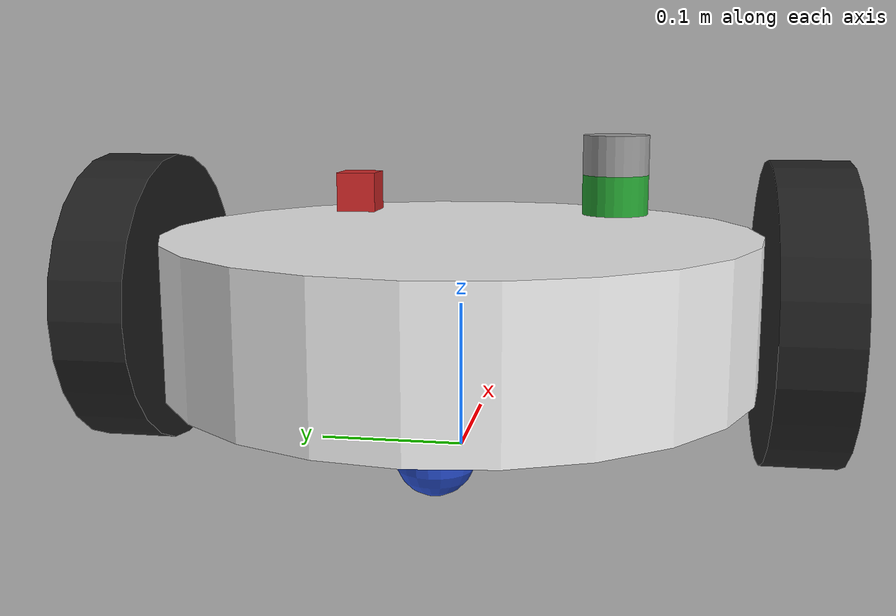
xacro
<?xml version="1.0" ?>
<!-- |    This document was autogenerated by xacro from diff_wheeled_robot.xacro       | -->
<!-- |    EDITING THIS FILE BY HAND IS NOT RECOMMENDED                                 | -->
<robot name="terry" xmlns:xacro="http://www.ros.org/wiki/xacro">

  <!-- PROPERTY LIST -->

  <!-- Constants -->
  <xacro:property name="PI" value="3.1415926535897931"/>
  <xacro:property name="density" value="1000"/> <!-- kg/m^3 -->

  <!-- Chassis dimensions -->
  <xacro:property name="rChassis" value="0.2" />  <!-- meters -->
  <xacro:property name="hChassis" value="0.1" /> <!-- meters -->
  <xacro:property name="mChassis" value="${density * PI * rChassis * rChassis * hChassis}" /> <!-- kg -->

  <!-- Wheel dimensions -->
  <xacro:property name="rWheel" value="0.1" />
  <xacro:property name="hWheel" value="0.05" />
  <xacro:property name="mWheel" value="${density * PI * rWheel * rWheel * hWheel}" />

  <!-- Caster wheel (sphere) dimensions -->
  <xacro:property name="rCaster" value="${(rWheel - hChassis/2.0) / 2.0}" />
  <xacro:property name="mCaster" value="${density * (4/3) * PI * rCaster * rCaster}" />

  <!-- Camera dimensions, square -->
  <xacro:property name="sCamera" value="0.03" />
  <xacro:property name="mCamera" value="0.02" />

  <!-- Lidar dimensions -->
  <xacro:property name="rLidar" value="0.025" />  <!-- meters -->
  <xacro:property name="hLidar" value="0.03" /> <!-- half height, meters -->
  <xacro:property name="mLidar" value="0.05" /> <!-- total mass, kg -->

  <!-- Frictions of joints -->
  <xacro:property name="friction_wheel_joints" value="0.1" />
  <xacro:property name="friction_caster_joints" value="0.05" />

  <!-- BASE-FOOTPRINT -->
  <!-- base_footprint is a fictitious link(frame) that is on the ground right below base_link origin -->
  <link name="base_footprint">
  </link>
  <joint name="base_footprint_joint" type="fixed">
    <origin rpy="0 0 0" xyz="0 0 ${rWheel}"/>
    <parent link="base_footprint"/>
    <child link="base_link"/>
  </joint>

  <!-- BASE-LINK -->
  <!--Actual body/chassis of the robot-->
  <link name="base_link">
    <inertial>
      <origin rpy="0 0 0" xyz="0 0 0"/>
      <mass value="${mChassis}"/>
      <inertia
        ixx="${mChassis / 12.0 * (3*rChassis*rChassis + hChassis*hChassis)}" ixy="0.0" ixz="0.0"
        iyy="${mChassis / 12.0 * (3*rChassis*rChassis + hChassis*hChassis)}" iyz="0.0"
        izz="${mChassis / 2.0 * (rChassis*rChassis)}"/>
    </inertial>
    <visual>
      <origin rpy="0 0 0" xyz="0 0 0"/>
      <geometry>
        <cylinder length="${hChassis}" radius="${rChassis}"/>
      </geometry>
    </visual>
    <collision>
      <origin rpy="0 0 0 " xyz="0 0 0"/>
      <geometry>
        <cylinder length="${hChassis}" radius="${rChassis}"/>
      </geometry>
    </collision>
  </link>
  <gazebo reference="base_link">
    <material>Gazebo/White</material>
    <turnGravityOff>false</turnGravityOff>
  </gazebo>

  <!--fb : front, back ; lr: left, right -->
  <link name="front_right_wheel">
    <visual>
      <origin rpy="${PI/2} 0  0 " xyz="0 0 0"/>
      <geometry>
        <cylinder length="${hWheel}" radius="${rWheel}"/>
      </geometry>
    </visual>
    <collision>
      <origin rpy="${PI/2} 0 0 " xyz="0 0 0"/>
      <geometry>
        <cylinder length="${hWheel}" radius="${rWheel}"/>
      </geometry>
    </collision>
    <inertial>
      <origin xyz="0 0 0"/>
      <mass value="${mWheel}"/>
      <inertia
        ixx="${mWheel / 12.0 * (3*rWheel*rWheel + hWheel*hWheel)}" ixy="0.0" ixz="0.0"
        iyy="${mWheel / 12.0 * (3*rWheel*rWheel + hWheel*hWheel)}" iyz="0.0"
        izz="${mWheel / 2.0 * (rWheel*rWheel)}"/>
    </inertial>
  </link>

  <gazebo reference="front_right_wheel">
    <!-- We will assume these values are unknown -->
    <material>Gazebo/Black</material>
    <turnGravityOff>false</turnGravityOff>
  </gazebo>

  <joint name="right_wheel_joint" type="continuous">
    <parent link="base_link"/>
    <child link="front_right_wheel"/>
    <origin rpy="0 0 0" xyz="0.0 ${rChassis + hWheel/2.0} 0.0"/>
    <axis rpy="0 0 0" xyz="0 1 0"/>
    <limit effort="100" velocity="100"/>
    <joint_properties damping="0.0" friction="${friction_wheel_joints}"/>
  </joint>

  <!-- Transmission is important to link the joints and the controller -->
  <transmission name="right_wheel_joint_trans">
    <type>transmission_interface/SimpleTransmission</type>
    <joint name="right_wheel_joint">
      <hardwareInterface>EffortJointInterface</hardwareInterface>
    </joint>
    <actuator name="right_wheel_joint_motor">
      <hardwareInterface>EffortJointInterface</hardwareInterface>
      <mechanicalReduction>1</mechanicalReduction>
    </actuator>
  </transmission>

  <!--fb : front, back ; lr: left, right -->
  <link name="front_left_wheel">
    <visual>
      <origin rpy="${PI/2} 0  0 " xyz="0 0 0"/>
      <geometry>
        <cylinder length="${hWheel}" radius="${rWheel}"/>
      </geometry>
    </visual>
    <collision>
      <origin rpy="${PI/2} 0 0 " xyz="0 0 0"/>
      <geometry>
        <cylinder length="${hWheel}" radius="${rWheel}"/>
      </geometry>
    </collision>
    <inertial>
      <origin xyz="0 0 0"/>
      <mass value="${mWheel}"/>
      <inertia
        ixx="${mWheel / 12.0 * (3*rWheel*rWheel + hWheel*hWheel)}" ixy="0.0" ixz="0.0"
        iyy="${mWheel / 12.0 * (3*rWheel*rWheel + hWheel*hWheel)}" iyz="0.0"
        izz="${mWheel / 2.0 * (rWheel*rWheel)}"/>
    </inertial>
  </link>

  <gazebo reference="front_left_wheel">
    <!-- We will assume these values are unknown -->
    <material>Gazebo/Black</material>
    <turnGravityOff>false</turnGravityOff>
  </gazebo>

  <joint name="left_wheel_joint" type="continuous">
    <parent link="base_link"/>
    <child link="front_left_wheel"/>
    <origin rpy="0 0 0" xyz="0.0 ${-rChassis - hWheel/2.0} 0.0"/>
    <axis rpy="0 0 0" xyz="0 1 0"/>
    <limit effort="100" velocity="100"/>
    <joint_properties damping="0.0" friction="${friction_wheel_joints}"/>
  </joint>
  <!-- Transmission is important to link the joints and the controller -->
  <transmission name="left_wheel_joint_trans">
    <type>transmission_interface/SimpleTransmission</type>
    <joint name="left_wheel_joint">
      <hardwareInterface>EffortJointInterface</hardwareInterface>
    </joint>
    <actuator name="left_wheel_joint_motor">
      <hardwareInterface>EffortJointInterface</hardwareInterface>
      <mechanicalReduction>1</mechanicalReduction>
    </actuator>
  </transmission>

  <!--Caster front  -->
  <link name="caster_front_link">
    <visual>
      <origin rpy="0 0 0" xyz="0 0 0"/>
      <geometry>
        <sphere radius="${rCaster}"/>
      </geometry>
    </visual>
    <collision>
      <geometry>
        <sphere radius="${rCaster}"/>
      </geometry>
      <origin rpy="0 0 0" xyz="0 0 0"/>
    </collision>
    <inertial>
      <origin xyz="0 0 0"/>
      <mass value="${mCaster}"/>
      <inertia
        ixx="${2.0*mCaster / 5.0 * (rCaster*rCaster)}" ixy="0.0" ixz="0.0"
        iyy="${2.0*mCaster / 5.0 * (rCaster*rCaster)}" iyz="0.0"
        izz="${2.0*mCaster / 5.0 * (rCaster*rCaster)}"/>
    </inertial>
  </link>
  <joint name="caster_front_joint" type="fixed">
    <parent link="base_link"/>
    <child link="caster_front_link"/>
    <origin rpy="0 0 0" xyz="${0.5 * rChassis} 0 ${-hChassis/2.0 - rCaster}"/>
  </joint>
  <gazebo reference="caster_front_link">
    <material>Gazebo/Blue</material>
    <turnGravityOff>false</turnGravityOff>
  </gazebo>

  <!-- Make the caster a spherical joint -->
  <link name="caster_front_link_x" />
  <joint name="caster_front_joint_x" type="continuous" >
      <parent link="caster_front_link" />
      <child link="caster_front_link_x" />
      <axis xyz="1 0 0" />
      <limit effort="100" velocity="100"/>
      <joint_properties damping="0.0" friction="${friction_caster_joints/3.0}"/>
  </joint>
  <link name="caster_front_link_y" />
  <joint name="caster_front_joint_y" type="continuous" >
      <parent link="caster_front_link_x" />
      <child link="caster_front_link_y" />
      <axis xyz="0 1 0" />
      <limit effort="100" velocity="100"/>
      <joint_properties damping="0.0" friction="${friction_caster_joints/3.0}"/>
  </joint>
  <link name="caster_front_link_z" />
  <joint name="caster_front_joint_z" type="continuous" >
      <parent link="caster_front_link_y" />
      <child link="caster_front_link_z" />
      <axis xyz="0 0 1" />
      <limit effort="100" velocity="100"/>
      <joint_properties damping="0.0" friction="${friction_caster_joints/3.0}"/>
  </joint>

  <!--Caster back  -->
  <link name="caster_back_link">
    <visual>
      <origin rpy="0 0 0" xyz="0 0 0"/>
      <geometry>
        <sphere radius="${rCaster}"/>
      </geometry>
    </visual>
    <collision>
      <geometry>
        <sphere radius="${rCaster}"/>
      </geometry>
      <origin rpy="0 0 0" xyz="0 0 0"/>
    </collision>
    <inertial>
      <origin xyz="0 0 0"/>
      <mass value="${mCaster}"/>
      <inertia
        ixx="${2.0*mCaster / 5.0 * (rCaster*rCaster)}" ixy="0.0" ixz="0.0"
        iyy="${2.0*mCaster / 5.0 * (rCaster*rCaster)}" iyz="0.0"
        izz="${2.0*mCaster / 5.0 * (rCaster*rCaster)}"/>
    </inertial>
  </link>
  <joint name="caster_back_joint" type="fixed">
    <parent link="base_link"/>
    <child link="caster_back_link"/>
    <origin rpy="0 0 0" xyz="${-0.5 * rChassis} 0 ${-hChassis/2.0 - rCaster}"/>
  </joint>
  <gazebo reference="caster_back_link">
    <material>Gazebo/Blue</material>
    <turnGravityOff>false</turnGravityOff>
  </gazebo>

  <!-- Make the caster a spherical joint -->
  <link name="caster_back_link_x" />
  <joint name="caster_back_joint_x" type="continuous" >
      <parent link="caster_back_link" />
      <child link="caster_back_link_x" />
      <axis xyz="1 0 0" />
      <limit effort="100" velocity="100"/>
      <joint_properties damping="0.0" friction="${friction_caster_joints/3.0}"/>
  </joint>
  <link name="caster_back_link_y" />
  <joint name="caster_back_joint_y" type="continuous" >
      <parent link="caster_back_link_x" />
      <child link="caster_back_link_y" />
      <axis xyz="0 1 0" />
      <limit effort="100" velocity="100"/>
      <joint_properties damping="0.0" friction="${friction_caster_joints/3.0}"/>
  </joint>
  <link name="caster_back_link_z" />
  <joint name="caster_back_joint_z" type="continuous" >
      <parent link="caster_back_link_y" />
      <child link="caster_back_link_z" />
      <axis xyz="0 0 1" />
      <limit effort="100" velocity="100"/>
      <joint_properties damping="0.0" friction="${friction_caster_joints/3.0}"/>
  </joint>

  <!-- SENSORS -->

  <!-- Camera -->

  <link name="camera_link">
    <collision>
      <origin xyz="0 0 0" rpy="0 0 0"/>
      <geometry>
        <box size="${sCamera} ${sCamera} ${sCamera}"/>
      </geometry>
    </collision>

    <visual>
      <origin xyz="0 0 0" rpy="0 0 0"/>
      <geometry>
        <box size="${sCamera} ${sCamera} ${sCamera}"/>
      </geometry>
    </visual>

    <inertial>
      <mass value="${mCamera}" />
      <origin xyz="0 0 0" rpy="0 0 0"/>
      <inertia ixx="${mCamera/12.0 * (2*sCamera*sCamera)}" ixy="0" ixz="0"
        iyy="${mCamera/12.0 * (2*sCamera*sCamera)}" iyz="0"
        izz="${mCamera/12.0 * (2*sCamera*sCamera)}" />
    </inertial>
  </link>

  <joint name="camera_joint" type="fixed">
    <parent link="base_link"/>
    <child link="camera_link"/>
    <origin xyz="${rChassis/2.0 + 0.02} 0.1 ${hChassis/2 + sCamera/2.0}" rpy="0 0 0"/>
  </joint>

  <gazebo reference="camera_link">
    <material>Gazebo/Red</material>
  </gazebo>

  <gazebo reference="camera_link">
    <sensor type="camera" name="camera">
      <update_rate>30.0</update_rate>
      <camera name="head">
        <horizontal_fov>1.3962634</horizontal_fov>
        <image>
          <width>800</width>
          <height>800</height>
          <format>R8G8B8</format>
        </image>
        <clip>
          <near>0.02</near>
          <far>300</far>
        </clip>
        <noise>
          <type>gaussian</type>
          <!-- Noise is sampled independently per pixel on each frame.
               That pixel's noise value is added to each of its color
               channels, which at that point lie in the range [0,1]. -->
          <mean>0.0</mean>
          <stddev>0.007</stddev>
        </noise>
      </camera>
      <plugin name="camera_controller" filename="libgazebo_ros_camera.so">
        <alwaysOn>true</alwaysOn>
        <updateRate>0.0</updateRate>
        <cameraName>terry_camera</cameraName>
        <imageTopicName>/terry/image_raw</imageTopicName>
        <cameraInfoTopicName>/terry/camera_info</cameraInfoTopicName>
        <frameName>camera_link</frameName>
        <!-- setting hackBaseline to anything but 0.0 will cause a misalignment
            between the gazebo sensor image and the frame it is supposed to
            be attached to -->
        <hackBaseline>0.07</hackBaseline>
        <distortionK1>0.0</distortionK1>
        <distortionK2>0.0</distortionK2>
        <distortionK3>0.0</distortionK3>
        <distortionT1>0.0</distortionT1>
        <distortionT2>0.0</distortionT2>
        <CxPrime>0</CxPrime>
        <Cx>0.0</Cx>
        <Cy>0.0</Cy>
        <focalLength>0.0</focalLength>
      </plugin>
    </sensor>
  </gazebo>

  <!-- IMU -->
  <link name="imu_link" />

  <joint name="imu_joint" type="fixed">
    <parent link="base_link" />
    <child link="imu_link" />
    <origin rpy="0 0 0" xyz="0 0 0"/>
  </joint>

  <gazebo>
    <plugin name="imu_plugin" filename="libgazebo_ros_imu.so">
      <alwaysOn>true</alwaysOn>
      <bodyName>imu_link</bodyName>
      <topicName>/terry/imu</topicName>
      <serviceName>imu_service</serviceName>
      <gaussianNoise>1e-06</gaussianNoise>
      <updateRate>20.0</updateRate>
    </plugin>
  </gazebo>

    <!-- Lidar -->
    <!-- Modeled after Velodyne HDL32 lidar -->
    <link name="lidar_base_link">
      <inertial>
        <origin rpy="0 0 0" xyz="0 0 0"/>
        <mass value="${mLidar/2.0}"/>
        <inertia
          ixx="${(mLidar/2.0) / 12.0 * (3*rLidar*rLidar + hLidar*hLidar)}" ixy="0.0" ixz="0.0"
          iyy="${(mLidar/2.0) / 12.0 * (3*rLidar*rLidar + hLidar*hLidar)}" iyz="0.0"
          izz="${(mLidar/2.0) / 2.0 * (rLidar*rLidar)}"/>
      </inertial>
      <visual>
        <origin rpy="0 0 0" xyz="0 0 0"/>
        <geometry>
          <cylinder length="${hLidar}" radius="${rLidar}"/>
        </geometry>
      </visual>
      <collision>
        <origin rpy="0 0 0 " xyz="0 0 0"/>
        <geometry>
          <cylinder length="${hLidar}" radius="${rLidar}"/>
        </geometry>
      </collision>
  </link>
  <gazebo reference="lidar_base_link">
    <material>Gazebo/Green</material>
  </gazebo>

  <joint name="lidar_base_joint" type="fixed">
    <origin rpy="0 0 0" xyz="${rChassis/2.0 + 0.02} -0.1 ${hChassis/2.0 + hLidar/2.0}"/>
    <parent link="base_link"/>
    <child link="lidar_base_link"/>
  </joint>

  <link name="lidar_top_link">
      <inertial>
        <origin rpy="0 0 0" xyz="0 0 0"/>
        <mass value="${mLidar/2.0}"/>
        <inertia
          ixx="${(mLidar/2.0) / 12.0 * (3*rLidar*rLidar + hLidar*hLidar)}" ixy="0.0" ixz="0.0"
          iyy="${(mLidar/2.0) / 12.0 * (3*rLidar*rLidar + hLidar*hLidar)}" iyz="0.0"
          izz="${(mLidar/2.0) / 2.0 * (rLidar*rLidar)}"/>
      </inertial>
      <visual>
        <origin rpy="0 0 0" xyz="0 0 0"/>
        <geometry>
          <cylinder length="${hLidar}" radius="${rLidar}"/>
        </geometry>
      </visual>
      <collision>
        <origin rpy="0 0 0 " xyz="0 0 0"/>
        <geometry>
          <cylinder length="${hLidar}" radius="${rLidar}"/>
        </geometry>
      </collision>
  </link>
  <gazebo reference="lidar_top_link">
    <material>Gazebo/Grey</material>
  </gazebo>

  <joint name="lidar_top_joint" type="continuous">
    <origin rpy="0 0 0" xyz="0 0 ${hLidar}"/>
    <parent link="lidar_base_link"/>
    <child link="lidar_top_link"/>
    <axis rpy="0 0 0" xyz="0 0 1"/>
    <limit effort="100" velocity="100"/>
    <joint_properties damping="0.0" friction="0.0"/>
  </joint>

  <gazebo reference="lidar_top_link">
    <sensor type="ray" name="lidar">
      <origin rpy="0 0 0 " xyz="${rLidar} 0 0"/>
      <visualize>true</visualize>
      <update_rate>30</update_rate>
      <topic>/terry/lidar_sensor</topic>
      <ray>
        <scan>
          <horizontal>
            <!-- The velodyne has 32 beams(samples) -->
            <samples>32</samples>
            <resolution>1</resolution>
            <!-- Minimum angle in radians -->
            <min_angle>-0.53529248</min_angle>
            <!-- Maximum angle in radians -->
            <max_angle>0.18622663</max_angle>
          </horizontal>
          <vertical>
            <samples>32</samples>
            <resolution>1</resolution>
            <min_angle>-0.53529248</min_angle>
            <max_angle>0.18622663</max_angle>
          </vertical>
        </scan>
        <range>
          <min>0.05</min>
          <max>70.0</max>
          <resolution>0.02</resolution>
        </range>
        <noise>
          <!-- Use gaussian noise -->
          <type>gaussian</type>
          <mean>0.0</mean>
          <stddev>0.02</stddev>
        </noise>
      </ray>
      <plugin name="velodyne_control" filename="libvelodyne_plugin.so">
        <alwaysOn>true</alwaysOn>
        <updateRate>0.0</updateRate>
        <velocity>25</velocity>
        <topicName>/terry/lidar_plugin</topicName>
        <frameName>lidar_base_link</frameName>
      </plugin>
    </sensor>
  </gazebo>

    <!-- Differential drive controller for wheel odometry  -->
    <gazebo>
      <plugin filename="libgazebo_ros_diff_drive.so" name="differential_drive_controller_front">
        <rosDebugLevel>Debug</rosDebugLevel>
        <publishWheelTF>True</publishWheelTF>
        <publishTf>1</publishTf>
        <publishWheelJointState>true</publishWheelJointState>
        <alwaysOn>true</alwaysOn>
        <updateRate>100.0</updateRate>
        <leftJoint>left_wheel_joint</leftJoint>
        <rightJoint>right_wheel_joint</rightJoint>
        <wheelSeparation>${2*rChassis + hWheel}</wheelSeparation>
        <wheelDiameter>${2*rWheel}</wheelDiameter>
        <broadcastTF>1</broadcastTF>
        <commandTopic>/terry/cmd_vel</commandTopic>
        <odometryFrame>odom</odometryFrame>
        <odometryTopic>/terry/odom</odometryTopic>
        <robotBaseFrame>base_link</robotBaseFrame>
      </plugin>
    </gazebo>

    <!-- For ROS control -->
    <gazebo>
    <plugin name="gazebo_ros_control" filename="libgazebo_ros_control.so">
      <robotNamespace>/terry</robotNamespace>
    </plugin>
  </gazebo>

</robot>
